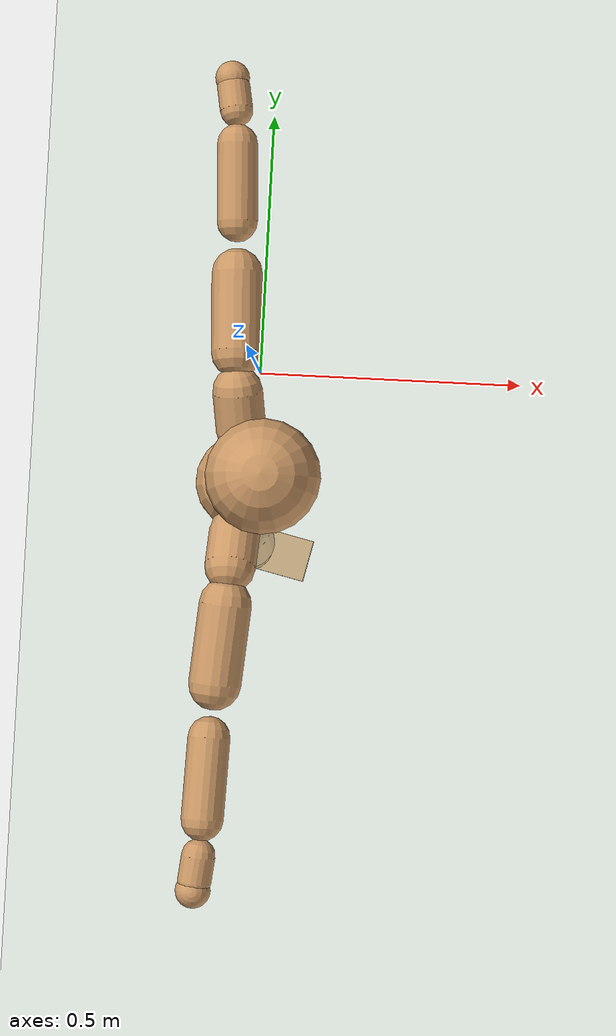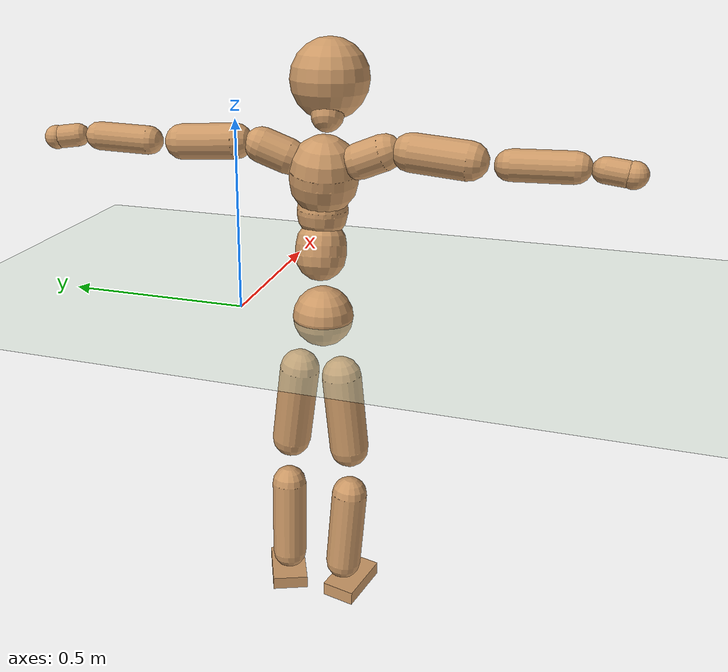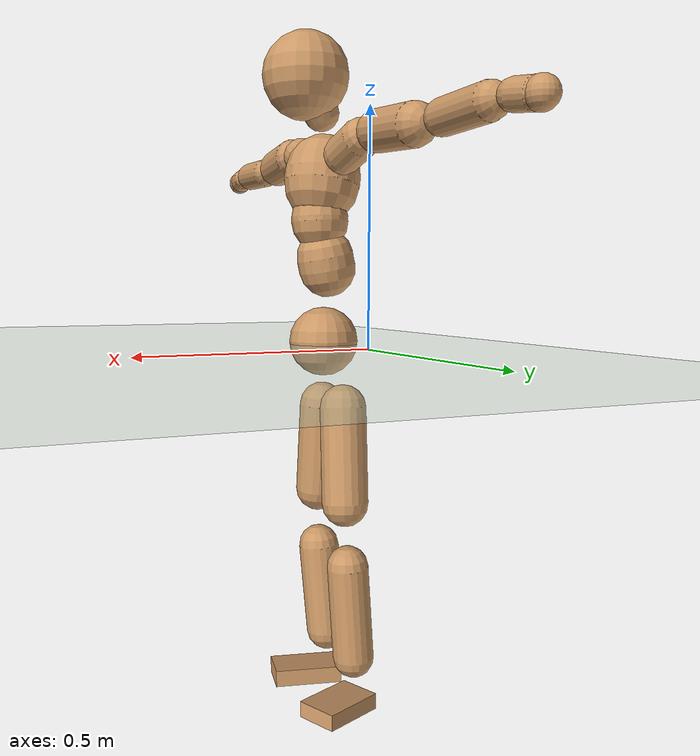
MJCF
<mujoco model="humanoid">
  <compiler coordinate="local" angle="radian"/>
  <default>
    <joint damping="0.0" armature="0.01" stiffness="0.0" limited="true"/>
    <geom conaffinity="1" condim="3" contype="7" margin="0.001" rgba="0.8 0.6 .4 1"/>
  </default>
  <asset>
    <texture type="skybox" builtin="gradient" rgb1=".4 .5 .6" rgb2="0 0 0" width="100" height="100"/>
    <texture builtin="flat" height="1278" mark="cross" markrgb="1 1 1" name="texgeom" random="0.01" rgb1="0.8 0.6 0.4" rgb2="0.8 0.6 0.4" type="cube" width="127"/>
    <texture builtin="checker" height="100" name="texplane" rgb1="0 0 0" rgb2="0.8 0.8 0.8" type="2d" width="100"/>
    <material name="MatPlane" reflectance="0.5" shininess="1" specular="1" texrepeat="60 60" texture="texplane"/>
    <material name="geom" texture="texgeom" texuniform="true"/>
  </asset>
  <worldbody>
    <light cutoff="100" diffuse="1 1 1" dir="-0 0 -1.3" directional="true" exponent="1" pos="0 0 1.3" specular=".1 .1 .1"/>
    <geom conaffinity="1" condim="3" name="floor" pos="0 0 0" rgba="0.8 0.9 0.8 1" size="100 100 .2" type="plane" material="MatPlane"/>
    <body name="Pelvis" pos="-0.0019 -0.2322 0.0042">
      <freejoint name="Pelvis"/>
      <geom type="sphere" contype="1" conaffinity="1" density="500" size="0.0796" pos="0.0000 0.0000 0.0000" name="Pelvis"/>
      <body name="L_Hip" pos="-0.0255 0.0486 -0.0767">
        <joint name="L_Hip_x" type="hinge" pos="0 0 0" axis="1 0 0" stiffness="800" damping="80" armature="0.02" range="-180.0000 180.0000"/>
        <joint name="L_Hip_y" type="hinge" pos="0 0 0" axis="0 1 0" stiffness="800" damping="80" armature="0.02" range="-180.0000 180.0000"/>
        <joint name="L_Hip_z" type="hinge" pos="0 0 0" axis="0 0 1" stiffness="800" damping="80" armature="0.02" range="-180.0000 180.0000"/>
        <geom type="capsule" contype="1" conaffinity="1" density="500" fromto="0.0020 0.0087 -0.0732 0.0082 0.0350 -0.2927" size="0.0531" name="L_Hip"/>
        <body name="L_Knee" pos="0.0102 0.0437 -0.3658">
          <joint name="L_Knee_x" type="hinge" pos="0 0 0" axis="1 0 0" stiffness="800" damping="80" armature="0.02" range="-180.0000 180.0000"/>
          <joint name="L_Knee_y" type="hinge" pos="0 0 0" axis="0 1 0" stiffness="800" damping="80" armature="0.02" range="-180.0000 180.0000"/>
          <joint name="L_Knee_z" type="hinge" pos="0 0 0" axis="0 0 1" stiffness="800" damping="80" armature="0.02" range="-180.0000 180.0000"/>
          <geom type="capsule" contype="1" conaffinity="1" density="500" fromto="-0.0063 -0.0020 -0.0741 -0.0251 -0.0082 -0.2964" size="0.0478" name="L_Knee"/>
          <body name="L_Ankle" pos="-0.0314 -0.0102 -0.3705">
            <joint name="L_Ankle_x" type="hinge" pos="0 0 0" axis="1 0 0" stiffness="800" damping="80" armature="0.02" range="-180.0000 180.0000"/>
            <joint name="L_Ankle_y" type="hinge" pos="0 0 0" axis="0 1 0" stiffness="800" damping="80" armature="0.02" range="-180.0000 180.0000"/>
            <joint name="L_Ankle_z" type="hinge" pos="0 0 0" axis="0 0 1" stiffness="800" damping="80" armature="0.02" range="-180.0000 180.0000"/>
            <geom type="box" contype="1" conaffinity="1" density="500" pos="0.0540 0.0224 -0.0273" size="0.0758 0.0499 0.0183" quat="0.9807 0.0000 0.0000 0.1953" name="L_Ankle"/>
            <body name="L_Toe" pos="0.108 0.0448 -0.0546">
              <joint name="L_Toe_x" type="hinge" pos="0 0 0" axis="1 0 0" stiffness="500" damping="50" armature="0.02" range="-180.0000 180.0000"/>
              <joint name="L_Toe_y" type="hinge" pos="0 0 0" axis="0 1 0" stiffness="500" damping="50" armature="0.02" range="-180.0000 180.0000"/>
              <joint name="L_Toe_z" type="hinge" pos="0 0 0" axis="0 0 1" stiffness="500" damping="50" armature="0.02" range="-180.0000 180.0000"/>
              <geom type="box" contype="1" conaffinity="1" density="500" pos="0.0000 0.0000 0.0291" size="0.001 0.0024 0.001" quat="0.9798 0.0000 0.0000 0.1998" name="L_Toe"/>
            </body>
          </body>
        </body>
      </body>
      <body name="R_Hip" pos="-0.023 -0.0508 -0.084">
        <joint name="R_Hip_x" type="hinge" pos="0 0 0" axis="1 0 0" stiffness="800" damping="80" armature="0.02" range="-180.0000 180.0000"/>
        <joint name="R_Hip_y" type="hinge" pos="0 0 0" axis="0 1 0" stiffness="800" damping="80" armature="0.02" range="-180.0000 180.0000"/>
        <joint name="R_Hip_z" type="hinge" pos="0 0 0" axis="0 0 1" stiffness="800" damping="80" armature="0.02" range="-180.0000 180.0000"/>
        <geom type="capsule" contype="1" conaffinity="1" density="500" fromto="-0.0002 -0.0085 -0.0714 -0.0007 -0.0340 -0.2857" size="0.0525" name="R_Hip"/>
        <body name="R_Knee" pos="-0.0009 -0.0425 -0.3572">
          <joint name="R_Knee_x" type="hinge" pos="0 0 0" axis="1 0 0" stiffness="800" damping="80" armature="0.02" range="-180.0000 180.0000"/>
          <joint name="R_Knee_y" type="hinge" pos="0 0 0" axis="0 1 0" stiffness="800" damping="80" armature="0.02" range="-180.0000 180.0000"/>
          <joint name="R_Knee_z" type="hinge" pos="0 0 0" axis="0 0 1" stiffness="800" damping="80" armature="0.02" range="-180.0000 180.0000"/>
          <geom type="capsule" contype="1" conaffinity="1" density="500" fromto="-0.0058 0.0031 -0.0728 -0.0232 0.0126 -0.2913" size="0.0487" name="R_Knee"/>
          <body name="R_Ankle" pos="-0.029 0.0157 -0.3641">
            <joint name="R_Ankle_x" type="hinge" pos="0 0 0" axis="1 0 0" stiffness="800" damping="80" armature="0.02" range="-180.0000 180.0000"/>
            <joint name="R_Ankle_y" type="hinge" pos="0 0 0" axis="0 1 0" stiffness="800" damping="80" armature="0.02" range="-180.0000 180.0000"/>
            <joint name="R_Ankle_z" type="hinge" pos="0 0 0" axis="0 0 1" stiffness="800" damping="80" armature="0.02" range="-180.0000 180.0000"/>
            <geom type="box" contype="1" conaffinity="1" density="500" pos="0.0584 -0.0133 -0.0286" size="0.0817 0.0462 0.0196" quat="0.9938 0.0000 0.0000 -0.1115" name="R_Ankle"/>
            <body name="R_Toe" pos="0.1167 -0.0265 -0.0571">
              <joint name="R_Toe_x" type="hinge" pos="0 0 0" axis="1 0 0" stiffness="500" damping="50" armature="0.02" range="-180.0000 180.0000"/>
              <joint name="R_Toe_y" type="hinge" pos="0 0 0" axis="0 1 0" stiffness="500" damping="50" armature="0.02" range="-180.0000 180.0000"/>
              <joint name="R_Toe_z" type="hinge" pos="0 0 0" axis="0 0 1" stiffness="500" damping="50" armature="0.02" range="-180.0000 180.0000"/>
              <geom type="box" contype="1" conaffinity="1" density="500" pos="0.0000 0.0000 0.0311" size="0.0009 0.0022 0.0011" quat="0.9948 0.0000 0.0000 -0.1017" name="R_Toe"/>
            </body>
          </body>
        </body>
      </body>
      <body name="Torso" pos="-0.0194 0.0036 0.1119">
        <joint name="Torso_x" type="hinge" pos="0 0 0" axis="1 0 0" stiffness="1000" damping="100" armature="0.02" range="-180.0000 180.0000"/>
        <joint name="Torso_y" type="hinge" pos="0 0 0" axis="0 1 0" stiffness="1000" damping="100" armature="0.02" range="-180.0000 180.0000"/>
        <joint name="Torso_z" type="hinge" pos="0 0 0" axis="0 0 1" stiffness="1000" damping="100" armature="0.02" range="-180.0000 180.0000"/>
        <geom type="capsule" contype="1" conaffinity="1" density="500" fromto="0.0193 0.0030 0.0834 0.0129 0.0020 0.0556" size="0.065" name="Torso"/>
        <body name="Spine" pos="0.0322 0.0049 0.1391">
          <joint name="Spine_x" type="hinge" pos="0 0 0" axis="1 0 0" stiffness="1000" damping="100" armature="0.02" range="-180.0000 180.0000"/>
          <joint name="Spine_y" type="hinge" pos="0 0 0" axis="0 1 0" stiffness="1000" damping="100" armature="0.02" range="-180.0000 180.0000"/>
          <joint name="Spine_z" type="hinge" pos="0 0 0" axis="0 0 1" stiffness="1000" damping="100" armature="0.02" range="-180.0000 180.0000"/>
          <geom type="capsule" contype="1" conaffinity="1" density="500" fromto="0.0008 -0.0008 0.0333 0.0006 -0.0006 0.0222" size="0.0649" name="Spine"/>
          <body name="Chest" pos="0.0014 -0.0014 0.0555">
            <joint name="Chest_x" type="hinge" pos="0 0 0" axis="1 0 0" stiffness="1000" damping="100" armature="0.02" range="-180.0000 180.0000"/>
            <joint name="Chest_y" type="hinge" pos="0 0 0" axis="0 1 0" stiffness="1000" damping="100" armature="0.02" range="-180.0000 180.0000"/>
            <joint name="Chest_z" type="hinge" pos="0 0 0" axis="0 0 1" stiffness="1000" damping="100" armature="0.02" range="-180.0000 180.0000"/>
            <geom type="capsule" contype="1" conaffinity="1" density="500" fromto="-0.0117 -0.0055 0.0782 -0.0078 -0.0036 0.0521" size="0.0865" name="Chest"/>
            <body name="Neck" pos="-0.0205 -0.0138 0.1915">
              <joint name="Neck_x" type="hinge" pos="0 0 0" axis="1 0 0" stiffness="500" damping="50" armature="0.02" range="-180.0000 180.0000"/>
              <joint name="Neck_y" type="hinge" pos="0 0 0" axis="0 1 0" stiffness="500" damping="50" armature="0.02" range="-180.0000 180.0000"/>
              <joint name="Neck_z" type="hinge" pos="0 0 0" axis="0 0 1" stiffness="500" damping="50" armature="0.02" range="-180.0000 180.0000"/>
              <geom type="capsule" contype="1" conaffinity="1" density="500" fromto="0.0105 0.0017 0.0196 0.0419 0.0070 0.0785" size="0.0407" name="Neck"/>
              <body name="Head" pos="0.0523 0.0087 0.0981">
                <joint name="Head_x" type="hinge" pos="0 0 0" axis="1 0 0" stiffness="500" damping="50" armature="0.02" range="-180.0000 180.0000"/>
                <joint name="Head_y" type="hinge" pos="0 0 0" axis="0 1 0" stiffness="500" damping="50" armature="0.02" range="-180.0000 180.0000"/>
                <joint name="Head_z" type="hinge" pos="0 0 0" axis="0 0 1" stiffness="500" damping="50" armature="0.02" range="-180.0000 180.0000"/>
                <geom type="sphere" contype="1" conaffinity="1" density="500" size="0.0981" pos="0.0000 0.0000 0.0000" name="Head"/>
              </body>
            </body>
            <body name="L_Thorax" pos="-0.017 0.0627 0.0998">
              <joint name="L_Thorax_x" type="hinge" pos="0 0 0" axis="1 0 0" stiffness="500" damping="50" armature="0.02" range="-180.0000 180.0000"/>
              <joint name="L_Thorax_y" type="hinge" pos="0 0 0" axis="0 1 0" stiffness="500" damping="50" armature="0.02" range="-180.0000 180.0000"/>
              <joint name="L_Thorax_z" type="hinge" pos="0 0 0" axis="0 0 1" stiffness="500" damping="50" armature="0.02" range="-180.0000 180.0000"/>
              <geom type="capsule" contype="1" conaffinity="1" density="500" fromto="-0.0027 0.0218 0.0084 -0.0109 0.0870 0.0337" size="0.0443" name="L_Thorax"/>
              <body name="L_Shoulder" pos="-0.0136 0.1088 0.0421">
                <joint name="L_Shoulder_x" type="hinge" pos="0 0 0" axis="1 0 0" stiffness="500" damping="50" armature="0.02" range="-720.0000 720.0000"/>
                <joint name="L_Shoulder_y" type="hinge" pos="0 0 0" axis="0 1 0" stiffness="500" damping="50" armature="0.02" range="-720.0000 720.0000"/>
                <joint name="L_Shoulder_z" type="hinge" pos="0 0 0" axis="0 0 1" stiffness="500" damping="50" armature="0.02" range="-720.0000 720.0000"/>
                <geom type="capsule" contype="1" conaffinity="1" density="500" fromto="-0.0024 0.0464 -0.0027 -0.0094 0.1854 -0.0109" size="0.0448" name="L_Shoulder"/>
                <body name="L_Elbow" pos="-0.0118 0.2318 -0.0136">
                  <joint name="L_Elbow_x" type="hinge" pos="0 0 0" axis="1 0 0" stiffness="500" damping="50" armature="0.02" range="-720.0000 720.0000"/>
                  <joint name="L_Elbow_y" type="hinge" pos="0 0 0" axis="0 1 0" stiffness="500" damping="50" armature="0.02" range="-720.0000 720.0000"/>
                  <joint name="L_Elbow_z" type="hinge" pos="0 0 0" axis="0 0 1" stiffness="500" damping="50" armature="0.02" range="-720.0000 720.0000"/>
                  <geom type="capsule" contype="1" conaffinity="1" density="500" fromto="-0.0022 0.0455 0.0015 -0.0090 0.1820 0.0060" size="0.0359" name="L_Elbow"/>
                  <body name="L_Wrist" pos="-0.0112 0.2275 0.0075">
                    <joint name="L_Wrist_x" type="hinge" pos="0 0 0" axis="1 0 0" stiffness="300" damping="30" armature="0.02" range="-180.0000 180.0000"/>
                    <joint name="L_Wrist_y" type="hinge" pos="0 0 0" axis="0 1 0" stiffness="300" damping="30" armature="0.02" range="-180.0000 180.0000"/>
                    <joint name="L_Wrist_z" type="hinge" pos="0 0 0" axis="0 0 1" stiffness="300" damping="30" armature="0.02" range="-180.0000 180.0000"/>
                    <geom type="capsule" contype="1" conaffinity="1" density="500" fromto="-0.0026 0.0147 -0.0018 -0.0105 0.0587 -0.0073" size="0.0291" name="L_Wrist"/>
                    <body name="L_Hand" pos="-0.0131 0.0734 -0.0091">
                      <joint name="L_Hand_x" type="hinge" pos="0 0 0" axis="1 0 0" stiffness="300" damping="30" armature="0.02" range="-180.0000 180.0000"/>
                      <joint name="L_Hand_y" type="hinge" pos="0 0 0" axis="0 1 0" stiffness="300" damping="30" armature="0.02" range="-180.0000 180.0000"/>
                      <joint name="L_Hand_z" type="hinge" pos="0 0 0" axis="0 0 1" stiffness="300" damping="30" armature="0.02" range="-180.0000 180.0000"/>
                      <geom type="sphere" contype="1" conaffinity="1" density="500" size="0.0303" pos="0.0000 0.0000 0.0000" name="L_Hand"/>
                    </body>
                  </body>
                </body>
              </body>
            </body>
            <body name="R_Thorax" pos="-0.0208 -0.0763 0.0997">
              <joint name="R_Thorax_x" type="hinge" pos="0 0 0" axis="1 0 0" stiffness="500" damping="50" armature="0.02" range="-180.0000 180.0000"/>
              <joint name="R_Thorax_y" type="hinge" pos="0 0 0" axis="0 1 0" stiffness="500" damping="50" armature="0.02" range="-180.0000 180.0000"/>
              <joint name="R_Thorax_z" type="hinge" pos="0 0 0" axis="0 0 1" stiffness="500" damping="50" armature="0.02" range="-180.0000 180.0000"/>
              <geom type="capsule" contype="1" conaffinity="1" density="500" fromto="-0.0009 -0.0202 0.0085 -0.0037 -0.0808 0.0339" size="0.0449" name="R_Thorax"/>
              <body name="R_Shoulder" pos="-0.0046 -0.101 0.0423">
                <joint name="R_Shoulder_x" type="hinge" pos="0 0 0" axis="1 0 0" stiffness="500" damping="50" armature="0.02" range="-720.0000 720.0000"/>
                <joint name="R_Shoulder_y" type="hinge" pos="0 0 0" axis="0 1 0" stiffness="500" damping="50" armature="0.02" range="-720.0000 720.0000"/>
                <joint name="R_Shoulder_z" type="hinge" pos="0 0 0" axis="0 0 1" stiffness="500" damping="50" armature="0.02" range="-720.0000 720.0000"/>
                <geom type="capsule" contype="1" conaffinity="1" density="500" fromto="-0.0038 -0.0461 -0.0029 -0.0153 -0.1844 -0.0116" size="0.0463" name="R_Shoulder"/>
                <body name="R_Elbow" pos="-0.0191 -0.2305 -0.0145">
                  <joint name="R_Elbow_x" type="hinge" pos="0 0 0" axis="1 0 0" stiffness="500" damping="50" armature="0.02" range="-720.0000 720.0000"/>
                  <joint name="R_Elbow_y" type="hinge" pos="0 0 0" axis="0 1 0" stiffness="500" damping="50" armature="0.02" range="-720.0000 720.0000"/>
                  <joint name="R_Elbow_z" type="hinge" pos="0 0 0" axis="0 0 1" stiffness="500" damping="50" armature="0.02" range="-720.0000 720.0000"/>
                  <geom type="capsule" contype="1" conaffinity="1" density="500" fromto="-0.0013 -0.0472 0.0015 -0.0052 -0.1890 0.0060" size="0.037" name="R_Elbow"/>
                  <body name="R_Wrist" pos="-0.0066 -0.2362 0.0075">
                    <joint name="R_Wrist_x" type="hinge" pos="0 0 0" axis="1 0 0" stiffness="300" damping="30" armature="0.02" range="-180.0000 180.0000"/>
                    <joint name="R_Wrist_y" type="hinge" pos="0 0 0" axis="0 1 0" stiffness="300" damping="30" armature="0.02" range="-180.0000 180.0000"/>
                    <joint name="R_Wrist_z" type="hinge" pos="0 0 0" axis="0 0 1" stiffness="300" damping="30" armature="0.02" range="-180.0000 180.0000"/>
                    <geom type="capsule" contype="1" conaffinity="1" density="500" fromto="-0.0017 -0.0151 -0.0014 -0.0069 -0.0606 -0.0057" size="0.0297" name="R_Wrist"/>
                    <body name="R_Hand" pos="-0.0087 -0.0757 -0.0071">
                      <joint name="R_Hand_x" type="hinge" pos="0 0 0" axis="1 0 0" stiffness="300" damping="30" armature="0.02" range="-180.0000 180.0000"/>
                      <joint name="R_Hand_y" type="hinge" pos="0 0 0" axis="0 1 0" stiffness="300" damping="30" armature="0.02" range="-180.0000 180.0000"/>
                      <joint name="R_Hand_z" type="hinge" pos="0 0 0" axis="0 0 1" stiffness="300" damping="30" armature="0.02" range="-180.0000 180.0000"/>
                      <geom type="sphere" contype="1" conaffinity="1" density="500" size="0.0309" pos="0.0000 0.0000 0.0000" name="R_Hand"/>
                    </body>
                  </body>
                </body>
              </body>
            </body>
          </body>
        </body>
      </body>
    </body>
  </worldbody>
  <actuator>
    <motor name="L_Hip_x" joint="L_Hip_x" gear="500"/>
    <motor name="L_Hip_y" joint="L_Hip_y" gear="500"/>
    <motor name="L_Hip_z" joint="L_Hip_z" gear="500"/>
    <motor name="L_Knee_x" joint="L_Knee_x" gear="500"/>
    <motor name="L_Knee_y" joint="L_Knee_y" gear="500"/>
    <motor name="L_Knee_z" joint="L_Knee_z" gear="500"/>
    <motor name="L_Ankle_x" joint="L_Ankle_x" gear="500"/>
    <motor name="L_Ankle_y" joint="L_Ankle_y" gear="500"/>
    <motor name="L_Ankle_z" joint="L_Ankle_z" gear="500"/>
    <motor name="L_Toe_x" joint="L_Toe_x" gear="500"/>
    <motor name="L_Toe_y" joint="L_Toe_y" gear="500"/>
    <motor name="L_Toe_z" joint="L_Toe_z" gear="500"/>
    <motor name="R_Hip_x" joint="R_Hip_x" gear="500"/>
    <motor name="R_Hip_y" joint="R_Hip_y" gear="500"/>
    <motor name="R_Hip_z" joint="R_Hip_z" gear="500"/>
    <motor name="R_Knee_x" joint="R_Knee_x" gear="500"/>
    <motor name="R_Knee_y" joint="R_Knee_y" gear="500"/>
    <motor name="R_Knee_z" joint="R_Knee_z" gear="500"/>
    <motor name="R_Ankle_x" joint="R_Ankle_x" gear="500"/>
    <motor name="R_Ankle_y" joint="R_Ankle_y" gear="500"/>
    <motor name="R_Ankle_z" joint="R_Ankle_z" gear="500"/>
    <motor name="R_Toe_x" joint="R_Toe_x" gear="500"/>
    <motor name="R_Toe_y" joint="R_Toe_y" gear="500"/>
    <motor name="R_Toe_z" joint="R_Toe_z" gear="500"/>
    <motor name="Torso_x" joint="Torso_x" gear="500"/>
    <motor name="Torso_y" joint="Torso_y" gear="500"/>
    <motor name="Torso_z" joint="Torso_z" gear="500"/>
    <motor name="Spine_x" joint="Spine_x" gear="500"/>
    <motor name="Spine_y" joint="Spine_y" gear="500"/>
    <motor name="Spine_z" joint="Spine_z" gear="500"/>
    <motor name="Chest_x" joint="Chest_x" gear="500"/>
    <motor name="Chest_y" joint="Chest_y" gear="500"/>
    <motor name="Chest_z" joint="Chest_z" gear="500"/>
    <motor name="Neck_x" joint="Neck_x" gear="500"/>
    <motor name="Neck_y" joint="Neck_y" gear="500"/>
    <motor name="Neck_z" joint="Neck_z" gear="500"/>
    <motor name="Head_x" joint="Head_x" gear="500"/>
    <motor name="Head_y" joint="Head_y" gear="500"/>
    <motor name="Head_z" joint="Head_z" gear="500"/>
    <motor name="L_Thorax_x" joint="L_Thorax_x" gear="500"/>
    <motor name="L_Thorax_y" joint="L_Thorax_y" gear="500"/>
    <motor name="L_Thorax_z" joint="L_Thorax_z" gear="500"/>
    <motor name="L_Shoulder_x" joint="L_Shoulder_x" gear="500"/>
    <motor name="L_Shoulder_y" joint="L_Shoulder_y" gear="500"/>
    <motor name="L_Shoulder_z" joint="L_Shoulder_z" gear="500"/>
    <motor name="L_Elbow_x" joint="L_Elbow_x" gear="500"/>
    <motor name="L_Elbow_y" joint="L_Elbow_y" gear="500"/>
    <motor name="L_Elbow_z" joint="L_Elbow_z" gear="500"/>
    <motor name="L_Wrist_x" joint="L_Wrist_x" gear="500"/>
    <motor name="L_Wrist_y" joint="L_Wrist_y" gear="500"/>
    <motor name="L_Wrist_z" joint="L_Wrist_z" gear="500"/>
    <motor name="L_Hand_x" joint="L_Hand_x" gear="500"/>
    <motor name="L_Hand_y" joint="L_Hand_y" gear="500"/>
    <motor name="L_Hand_z" joint="L_Hand_z" gear="500"/>
    <motor name="R_Thorax_x" joint="R_Thorax_x" gear="500"/>
    <motor name="R_Thorax_y" joint="R_Thorax_y" gear="500"/>
    <motor name="R_Thorax_z" joint="R_Thorax_z" gear="500"/>
    <motor name="R_Shoulder_x" joint="R_Shoulder_x" gear="500"/>
    <motor name="R_Shoulder_y" joint="R_Shoulder_y" gear="500"/>
    <motor name="R_Shoulder_z" joint="R_Shoulder_z" gear="500"/>
    <motor name="R_Elbow_x" joint="R_Elbow_x" gear="500"/>
    <motor name="R_Elbow_y" joint="R_Elbow_y" gear="500"/>
    <motor name="R_Elbow_z" joint="R_Elbow_z" gear="500"/>
    <motor name="R_Wrist_x" joint="R_Wrist_x" gear="500"/>
    <motor name="R_Wrist_y" joint="R_Wrist_y" gear="500"/>
    <motor name="R_Wrist_z" joint="R_Wrist_z" gear="500"/>
    <motor name="R_Hand_x" joint="R_Hand_x" gear="500"/>
    <motor name="R_Hand_y" joint="R_Hand_y" gear="500"/>
    <motor name="R_Hand_z" joint="R_Hand_z" gear="500"/>
  </actuator>
  <contact>
    <exclude body1="Torso" body2="Chest"/>
    <exclude body1="Head" body2="Chest"/>
    <exclude body1="R_Knee" body2="R_Toe"/>
    <exclude body1="R_Knee" body2="L_Ankle"/>
    <exclude body1="R_Knee" body2="L_Toe"/>
    <exclude body1="L_Knee" body2="L_Toe"/>
    <exclude body1="L_Knee" body2="R_Ankle"/>
    <exclude body1="L_Knee" body2="R_Toe"/>
    <exclude body1="L_Shoulder" body2="Chest"/>
    <exclude body1="R_Shoulder" body2="Chest"/>
  </contact>
  <sensor/>
  <size njmax="700" nconmax="700"/>
</mujoco>
